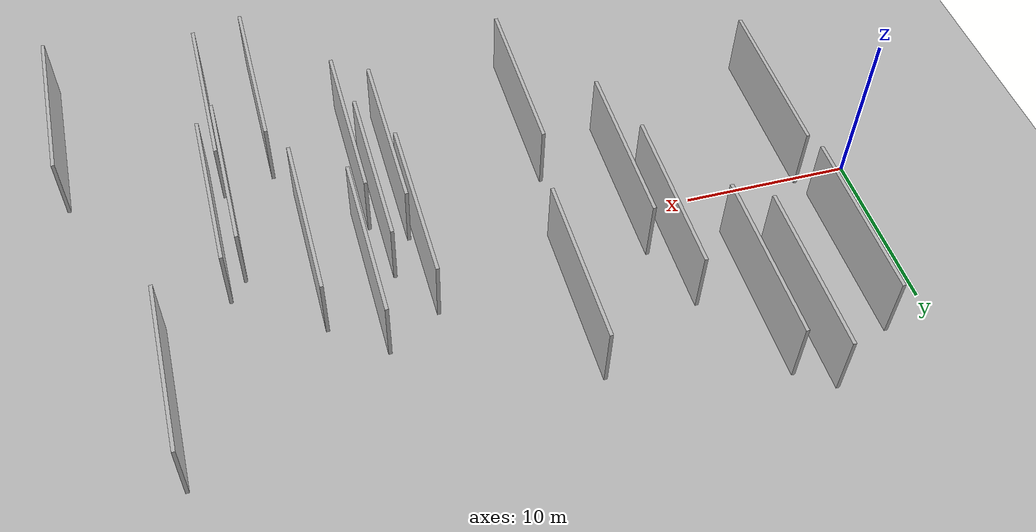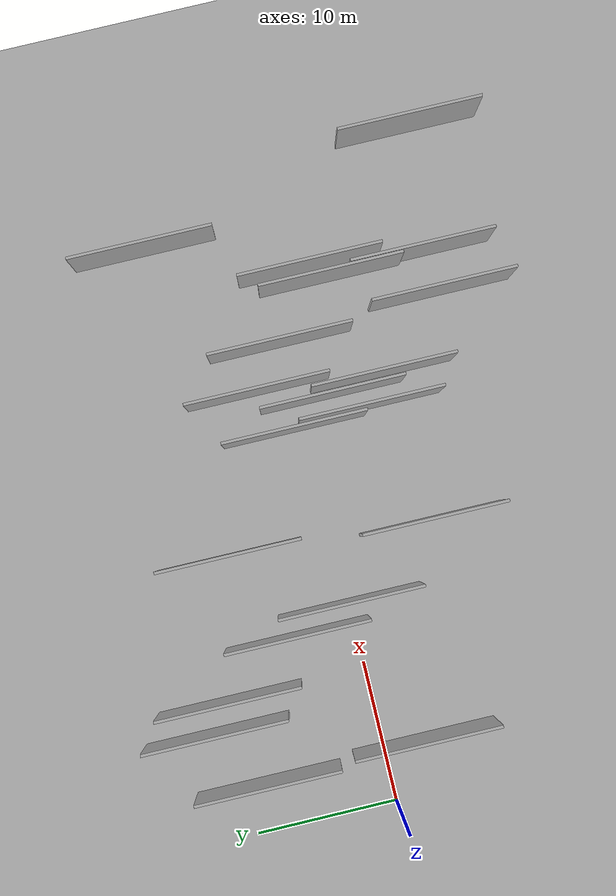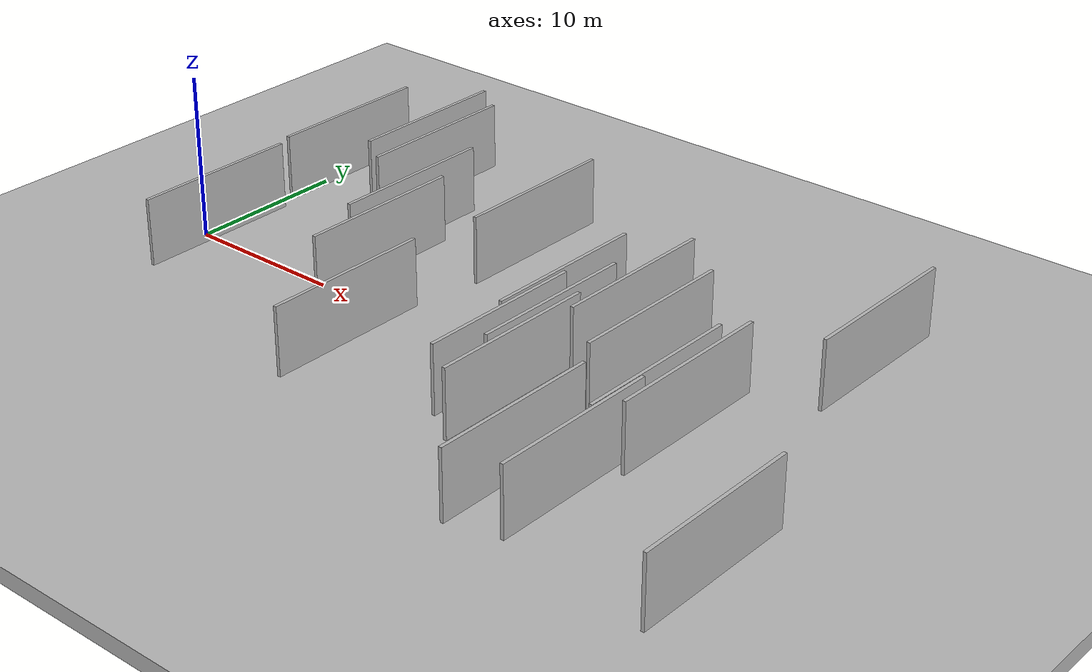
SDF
<?xml version="1.0" encoding="utf-8"?>

<sdf version="1.6">

   <world name="default">

      <gui fullscreen="0">

         <camera name="user_camera">

            <pose>-15 0 4.57585 0 0 0</pose>

            <view_controller>orbit</view_controller>

         </camera>

      </gui>

      <scene>

         <sky>

           <clouds>

             <speed>12</speed>

           </clouds>

         </sky>

         <ambient>0.4 0.4 0.4 1</ambient>

         <background>0.7 0.7 0.7 1</background>

         <shadows>1</shadows>

      </scene>

      <gravity>0 0 -9.8066</gravity>

      <magnetic_field>6e-06 2.3e-05 -4.2e-05</magnetic_field>

      <physics default="0" name="default_physics" type="ode">

         <ode>

            <solver>

               <type>quick</type>

               <iters>10</iters>

               <sor>1.0</sor>

               <use_dynamic_moi_rescaling>0</use_dynamic_moi_rescaling>

            </solver>

            <constraints>

               <cfm>0</cfm>

               <erp>0.2</erp>

               <contact_max_correcting_vel>100</contact_max_correcting_vel>

               <contact_surface_layer>0.001</contact_surface_layer>

            </constraints>

         </ode>

         <max_step_size>0.004</max_step_size>

         <real_time_factor>1</real_time_factor>

         <real_time_update_rate>250</real_time_update_rate>

      </physics>

      <light name="sun" type="directional">

         <cast_shadows>1</cast_shadows>

         <pose>0 0 10 0 0 0</pose>

         <diffuse>0.8 0.8 0.8 1</diffuse>

         <specular>0.2 0.2 0.2 1</specular>

         <attenuation>

            <range>1000</range>

            <constant>0.9</constant>

            <linear>0.01</linear>

            <quadratic>0.001</quadratic>

         </attenuation>

         <direction>-0.5 0.1 -0.9</direction>

      </light>

      <include>

         <name>ground_plane_1</name>

         <uri>model://HANNAS_ground_plane</uri>

         <pose>0 0 0  0 0 0</pose>

      </include>

      <include>

         <name>ground_plane_2</name>

         <uri>model://HANNAS_ground_plane</uri>

         <pose>100 0 0  0 0 0</pose>

      </include>

      <model name="HANNAS_wall_1">

         <static>1</static>

         <pose frame="">36.9016 -10.1512 2.5 0.000000 0.000000 1.570796</pose>

         <link name="link">

            <pose frame="">0 0 2.00 0 0 0</pose>

            <collision name="collision">

               <geometry>

                  <box>

                     <size>10.00 0.2 4.00</size>

                  </box>

               </geometry>

               <max_contacts>10</max_contacts>

               <surface>

                  <contact>

                     <ode/>

                  </contact>

                  <bounce/>

                  <friction>

                     <torsional>

                        <ode/>

                     </torsional>

                     <ode/>

                  </friction>

               </surface>

            </collision>

            <visual name="visual">

               <cast_shadows>0</cast_shadows>

               <geometry>

                  <box>

                     <size>10.00 0.2 4.00</size>

                  </box>

               </geometry>

               <material>

                  <script>

                     <uri>model://HANNAS_wall/materials/scripts</uri>

                     <uri>model://HANNAS_wall/materials/textures</uri>

                     <name>vrc/HANNAS_wall</name>

                  </script>

               </material>

            </visual>

            <self_collide>0</self_collide>

            <enable_wind>0</enable_wind>

            <kinematic>0</kinematic>

         </link>

      </model>

      <model name="HANNAS_wall_2">

         <static>1</static>

         <pose frame="">4.1714 8.2044 2.5 0.000000 0.000000 1.570796</pose>

         <link name="link">

            <pose frame="">0 0 2.00 0 0 0</pose>

            <collision name="collision">

               <geometry>

                  <box>

                     <size>10.00 0.2 4.00</size>

                  </box>

               </geometry>

               <max_contacts>10</max_contacts>

               <surface>

                  <contact>

                     <ode/>

                  </contact>

                  <bounce/>

                  <friction>

                     <torsional>

                        <ode/>

                     </torsional>

                     <ode/>

                  </friction>

               </surface>

            </collision>

            <visual name="visual">

               <cast_shadows>0</cast_shadows>

               <geometry>

                  <box>

                     <size>10.00 0.2 4.00</size>

                  </box>

               </geometry>

               <material>

                  <script>

                     <uri>model://HANNAS_wall/materials/scripts</uri>

                     <uri>model://HANNAS_wall/materials/textures</uri>

                     <name>vrc/HANNAS_wall</name>

                  </script>

               </material>

            </visual>

            <self_collide>0</self_collide>

            <enable_wind>0</enable_wind>

            <kinematic>0</kinematic>

         </link>

      </model>

      <model name="HANNAS_wall_3">

         <static>1</static>

         <pose frame="">8.1892 10.8636 2.5 0.000000 0.000000 1.570796</pose>

         <link name="link">

            <pose frame="">0 0 2.00 0 0 0</pose>

            <collision name="collision">

               <geometry>

                  <box>

                     <size>10.00 0.2 4.00</size>

                  </box>

               </geometry>

               <max_contacts>10</max_contacts>

               <surface>

                  <contact>

                     <ode/>

                  </contact>

                  <bounce/>

                  <friction>

                     <torsional>

                        <ode/>

                     </torsional>

                     <ode/>

                  </friction>

               </surface>

            </collision>

            <visual name="visual">

               <cast_shadows>0</cast_shadows>

               <geometry>

                  <box>

                     <size>10.00 0.2 4.00</size>

                  </box>

               </geometry>

               <material>

                  <script>

                     <uri>model://HANNAS_wall/materials/scripts</uri>

                     <uri>model://HANNAS_wall/materials/textures</uri>

                     <name>vrc/HANNAS_wall</name>

                  </script>

               </material>

            </visual>

            <self_collide>0</self_collide>

            <enable_wind>0</enable_wind>

            <kinematic>0</kinematic>

         </link>

      </model>

      <model name="HANNAS_wall_4">

         <static>1</static>

         <pose frame="">29.3233 -5.6757 2.5 0.000000 0.000000 1.570796</pose>

         <link name="link">

            <pose frame="">0 0 2.00 0 0 0</pose>

            <collision name="collision">

               <geometry>

                  <box>

                     <size>10.00 0.2 4.00</size>

                  </box>

               </geometry>

               <max_contacts>10</max_contacts>

               <surface>

                  <contact>

                     <ode/>

                  </contact>

                  <bounce/>

                  <friction>

                     <torsional>

                        <ode/>

                     </torsional>

                     <ode/>

                  </friction>

               </surface>

            </collision>

            <visual name="visual">

               <cast_shadows>0</cast_shadows>

               <geometry>

                  <box>

                     <size>10.00 0.2 4.00</size>

                  </box>

               </geometry>

               <material>

                  <script>

                     <uri>model://HANNAS_wall/materials/scripts</uri>

                     <uri>model://HANNAS_wall/materials/textures</uri>

                     <name>vrc/HANNAS_wall</name>

                  </script>

               </material>

            </visual>

            <self_collide>0</self_collide>

            <enable_wind>0</enable_wind>

            <kinematic>0</kinematic>

         </link>

      </model>

      <model name="HANNAS_wall_5">

         <static>1</static>

         <pose frame="">32.9487 0.6341 2.5 0.000000 0.000000 1.570796</pose>

         <link name="link">

            <pose frame="">0 0 2.00 0 0 0</pose>

            <collision name="collision">

               <geometry>

                  <box>

                     <size>10.00 0.2 4.00</size>

                  </box>

               </geometry>

               <max_contacts>10</max_contacts>

               <surface>

                  <contact>

                     <ode/>

                  </contact>

                  <bounce/>

                  <friction>

                     <torsional>

                        <ode/>

                     </torsional>

                     <ode/>

                  </friction>

               </surface>

            </collision>

            <visual name="visual">

               <cast_shadows>0</cast_shadows>

               <geometry>

                  <box>

                     <size>10.00 0.2 4.00</size>

                  </box>

               </geometry>

               <material>

                  <script>

                     <uri>model://HANNAS_wall/materials/scripts</uri>

                     <uri>model://HANNAS_wall/materials/textures</uri>

                     <name>vrc/HANNAS_wall</name>

                  </script>

               </material>

            </visual>

            <self_collide>0</self_collide>

            <enable_wind>0</enable_wind>

            <kinematic>0</kinematic>

         </link>

      </model>

      <model name="HANNAS_wall_6">

         <static>1</static>

         <pose frame="">30.0461 2.8955 2.5 0.000000 0.000000 1.570796</pose>

         <link name="link">

            <pose frame="">0 0 2.00 0 0 0</pose>

            <collision name="collision">

               <geometry>

                  <box>

                     <size>10.00 0.2 4.00</size>

                  </box>

               </geometry>

               <max_contacts>10</max_contacts>

               <surface>

                  <contact>

                     <ode/>

                  </contact>

                  <bounce/>

                  <friction>

                     <torsional>

                        <ode/>

                     </torsional>

                     <ode/>

                  </friction>

               </surface>

            </collision>

            <visual name="visual">

               <cast_shadows>0</cast_shadows>

               <geometry>

                  <box>

                     <size>10.00 0.2 4.00</size>

                  </box>

               </geometry>

               <material>

                  <script>

                     <uri>model://HANNAS_wall/materials/scripts</uri>

                     <uri>model://HANNAS_wall/materials/textures</uri>

                     <name>vrc/HANNAS_wall</name>

                  </script>

               </material>

            </visual>

            <self_collide>0</self_collide>

            <enable_wind>0</enable_wind>

            <kinematic>0</kinematic>

         </link>

      </model>

      <model name="HANNAS_wall_7">

         <static>1</static>

         <pose frame="">33.9650 -10.9156 2.5 0.000000 0.000000 1.570796</pose>

         <link name="link">

            <pose frame="">0 0 2.00 0 0 0</pose>

            <collision name="collision">

               <geometry>

                  <box>

                     <size>10.00 0.2 4.00</size>

                  </box>

               </geometry>

               <max_contacts>10</max_contacts>

               <surface>

                  <contact>

                     <ode/>

                  </contact>

                  <bounce/>

                  <friction>

                     <torsional>

                        <ode/>

                     </torsional>

                     <ode/>

                  </friction>

               </surface>

            </collision>

            <visual name="visual">

               <cast_shadows>0</cast_shadows>

               <geometry>

                  <box>

                     <size>10.00 0.2 4.00</size>

                  </box>

               </geometry>

               <material>

                  <script>

                     <uri>model://HANNAS_wall/materials/scripts</uri>

                     <uri>model://HANNAS_wall/materials/textures</uri>

                     <name>vrc/HANNAS_wall</name>

                  </script>

               </material>

            </visual>

            <self_collide>0</self_collide>

            <enable_wind>0</enable_wind>

            <kinematic>0</kinematic>

         </link>

      </model>

      <model name="HANNAS_wall_8">

         <static>1</static>

         <pose frame="">37.6508 -2.5333 2.5 0.000000 0.000000 1.570796</pose>

         <link name="link">

            <pose frame="">0 0 2.00 0 0 0</pose>

            <collision name="collision">

               <geometry>

                  <box>

                     <size>10.00 0.2 4.00</size>

                  </box>

               </geometry>

               <max_contacts>10</max_contacts>

               <surface>

                  <contact>

                     <ode/>

                  </contact>

                  <bounce/>

                  <friction>

                     <torsional>

                        <ode/>

                     </torsional>

                     <ode/>

                  </friction>

               </surface>

            </collision>

            <visual name="visual">

               <cast_shadows>0</cast_shadows>

               <geometry>

                  <box>

                     <size>10.00 0.2 4.00</size>

                  </box>

               </geometry>

               <material>

                  <script>

                     <uri>model://HANNAS_wall/materials/scripts</uri>

                     <uri>model://HANNAS_wall/materials/textures</uri>

                     <name>vrc/HANNAS_wall</name>

                  </script>

               </material>

            </visual>

            <self_collide>0</self_collide>

            <enable_wind>0</enable_wind>

            <kinematic>0</kinematic>

         </link>

      </model>

      <model name="HANNAS_wall_9">

         <static>1</static>

         <pose frame="">10.0956 9.5350 2.5 0.000000 0.000000 1.570796</pose>

         <link name="link">

            <pose frame="">0 0 2.00 0 0 0</pose>

            <collision name="collision">

               <geometry>

                  <box>

                     <size>10.00 0.2 4.00</size>

                  </box>

               </geometry>

               <max_contacts>10</max_contacts>

               <surface>

                  <contact>

                     <ode/>

                  </contact>

                  <bounce/>

                  <friction>

                     <torsional>

                        <ode/>

                     </torsional>

                     <ode/>

                  </friction>

               </surface>

            </collision>

            <visual name="visual">

               <cast_shadows>0</cast_shadows>

               <geometry>

                  <box>

                     <size>10.00 0.2 4.00</size>

                  </box>

               </geometry>

               <material>

                  <script>

                     <uri>model://HANNAS_wall/materials/scripts</uri>

                     <uri>model://HANNAS_wall/materials/textures</uri>

                     <name>vrc/HANNAS_wall</name>

                  </script>

               </material>

            </visual>

            <self_collide>0</self_collide>

            <enable_wind>0</enable_wind>

            <kinematic>0</kinematic>

         </link>

      </model>

      <model name="HANNAS_wall_10">

         <static>1</static>

         <pose frame="">41.3706 8.2817 2.5 0.000000 0.000000 1.570796</pose>

         <link name="link">

            <pose frame="">0 0 2.00 0 0 0</pose>

            <collision name="collision">

               <geometry>

                  <box>

                     <size>10.00 0.2 4.00</size>

                  </box>

               </geometry>

               <max_contacts>10</max_contacts>

               <surface>

                  <contact>

                     <ode/>

                  </contact>

                  <bounce/>

                  <friction>

                     <torsional>

                        <ode/>

                     </torsional>

                     <ode/>

                  </friction>

               </surface>

            </collision>

            <visual name="visual">

               <cast_shadows>0</cast_shadows>

               <geometry>

                  <box>

                     <size>10.00 0.2 4.00</size>

                  </box>

               </geometry>

               <material>

                  <script>

                     <uri>model://HANNAS_wall/materials/scripts</uri>

                     <uri>model://HANNAS_wall/materials/textures</uri>

                     <name>vrc/HANNAS_wall</name>

                  </script>

               </material>

            </visual>

            <self_collide>0</self_collide>

            <enable_wind>0</enable_wind>

            <kinematic>0</kinematic>

         </link>

      </model>

      <model name="HANNAS_wall_11">

         <static>1</static>

         <pose frame="">28.6716 -1.9742 2.5 0.000000 0.000000 1.570796</pose>

         <link name="link">

            <pose frame="">0 0 2.00 0 0 0</pose>

            <collision name="collision">

               <geometry>

                  <box>

                     <size>10.00 0.2 4.00</size>

                  </box>

               </geometry>

               <max_contacts>10</max_contacts>

               <surface>

                  <contact>

                     <ode/>

                  </contact>

                  <bounce/>

                  <friction>

                     <torsional>

                        <ode/>

                     </torsional>

                     <ode/>

                  </friction>

               </surface>

            </collision>

            <visual name="visual">

               <cast_shadows>0</cast_shadows>

               <geometry>

                  <box>

                     <size>10.00 0.2 4.00</size>

                  </box>

               </geometry>

               <material>

                  <script>

                     <uri>model://HANNAS_wall/materials/scripts</uri>

                     <uri>model://HANNAS_wall/materials/textures</uri>

                     <name>vrc/HANNAS_wall</name>

                  </script>

               </material>

            </visual>

            <self_collide>0</self_collide>

            <enable_wind>0</enable_wind>

            <kinematic>0</kinematic>

         </link>

      </model>

      <model name="HANNAS_wall_12">

         <static>1</static>

         <pose frame="">26.9527 1.0534 2.5 0.000000 0.000000 1.570796</pose>

         <link name="link">

            <pose frame="">0 0 2.00 0 0 0</pose>

            <collision name="collision">

               <geometry>

                  <box>

                     <size>10.00 0.2 4.00</size>

                  </box>

               </geometry>

               <max_contacts>10</max_contacts>

               <surface>

                  <contact>

                     <ode/>

                  </contact>

                  <bounce/>

                  <friction>

                     <torsional>

                        <ode/>

                     </torsional>

                     <ode/>

                  </friction>

               </surface>

            </collision>

            <visual name="visual">

               <cast_shadows>0</cast_shadows>

               <geometry>

                  <box>

                     <size>10.00 0.2 4.00</size>

                  </box>

               </geometry>

               <material>

                  <script>

                     <uri>model://HANNAS_wall/materials/scripts</uri>

                     <uri>model://HANNAS_wall/materials/textures</uri>

                     <name>vrc/HANNAS_wall</name>

                  </script>

               </material>

            </visual>

            <self_collide>0</self_collide>

            <enable_wind>0</enable_wind>

            <kinematic>0</kinematic>

         </link>

      </model>

      <model name="HANNAS_wall_13">

         <static>1</static>

         <pose frame="">13.3282 4.0513 2.5 0.000000 0.000000 1.570796</pose>

         <link name="link">

            <pose frame="">0 0 2.00 0 0 0</pose>

            <collision name="collision">

               <geometry>

                  <box>

                     <size>10.00 0.2 4.00</size>

                  </box>

               </geometry>

               <max_contacts>10</max_contacts>

               <surface>

                  <contact>

                     <ode/>

                  </contact>

                  <bounce/>

                  <friction>

                     <torsional>

                        <ode/>

                     </torsional>

                     <ode/>

                  </friction>

               </surface>

            </collision>

            <visual name="visual">

               <cast_shadows>0</cast_shadows>

               <geometry>

                  <box>

                     <size>10.00 0.2 4.00</size>

                  </box>

               </geometry>

               <material>

                  <script>

                     <uri>model://HANNAS_wall/materials/scripts</uri>

                     <uri>model://HANNAS_wall/materials/textures</uri>

                     <name>vrc/HANNAS_wall</name>

                  </script>

               </material>

            </visual>

            <self_collide>0</self_collide>

            <enable_wind>0</enable_wind>

            <kinematic>0</kinematic>

         </link>

      </model>

      <model name="HANNAS_wall_14">

         <static>1</static>

         <pose frame="">4.5772 -2.7460 2.5 0.000000 0.000000 1.570796</pose>

         <link name="link">

            <pose frame="">0 0 2.00 0 0 0</pose>

            <collision name="collision">

               <geometry>

                  <box>

                     <size>10.00 0.2 4.00</size>

                  </box>

               </geometry>

               <max_contacts>10</max_contacts>

               <surface>

                  <contact>

                     <ode/>

                  </contact>

                  <bounce/>

                  <friction>

                     <torsional>

                        <ode/>

                     </torsional>

                     <ode/>

                  </friction>

               </surface>

            </collision>

            <visual name="visual">

               <cast_shadows>0</cast_shadows>

               <geometry>

                  <box>

                     <size>10.00 0.2 4.00</size>

                  </box>

               </geometry>

               <material>

                  <script>

                     <uri>model://HANNAS_wall/materials/scripts</uri>

                     <uri>model://HANNAS_wall/materials/textures</uri>

                     <name>vrc/HANNAS_wall</name>

                  </script>

               </material>

            </visual>

            <self_collide>0</self_collide>

            <enable_wind>0</enable_wind>

            <kinematic>0</kinematic>

         </link>

      </model>

      <model name="HANNAS_wall_15">

         <static>1</static>

         <pose frame="">36.6716 -3.7565 2.5 0.000000 0.000000 1.570796</pose>

         <link name="link">

            <pose frame="">0 0 2.00 0 0 0</pose>

            <collision name="collision">

               <geometry>

                  <box>

                     <size>10.00 0.2 4.00</size>

                  </box>

               </geometry>

               <max_contacts>10</max_contacts>

               <surface>

                  <contact>

                     <ode/>

                  </contact>

                  <bounce/>

                  <friction>

                     <torsional>

                        <ode/>

                     </torsional>

                     <ode/>

                  </friction>

               </surface>

            </collision>

            <visual name="visual">

               <cast_shadows>0</cast_shadows>

               <geometry>

                  <box>

                     <size>10.00 0.2 4.00</size>

                  </box>

               </geometry>

               <material>

                  <script>

                     <uri>model://HANNAS_wall/materials/scripts</uri>

                     <uri>model://HANNAS_wall/materials/textures</uri>

                     <name>vrc/HANNAS_wall</name>

                  </script>

               </material>

            </visual>

            <self_collide>0</self_collide>

            <enable_wind>0</enable_wind>

            <kinematic>0</kinematic>

         </link>

      </model>

      <model name="HANNAS_wall_16">

         <static>1</static>

         <pose frame="">27.3388 -4.3617 2.5 0.000000 0.000000 1.570796</pose>

         <link name="link">

            <pose frame="">0 0 2.00 0 0 0</pose>

            <collision name="collision">

               <geometry>

                  <box>

                     <size>10.00 0.2 4.00</size>

                  </box>

               </geometry>

               <max_contacts>10</max_contacts>

               <surface>

                  <contact>

                     <ode/>

                  </contact>

                  <bounce/>

                  <friction>

                     <torsional>

                        <ode/>

                     </torsional>

                     <ode/>

                  </friction>

               </surface>

            </collision>

            <visual name="visual">

               <cast_shadows>0</cast_shadows>

               <geometry>

                  <box>

                     <size>10.00 0.2 4.00</size>

                  </box>

               </geometry>

               <material>

                  <script>

                     <uri>model://HANNAS_wall/materials/scripts</uri>

                     <uri>model://HANNAS_wall/materials/textures</uri>

                     <name>vrc/HANNAS_wall</name>

                  </script>

               </material>

            </visual>

            <self_collide>0</self_collide>

            <enable_wind>0</enable_wind>

            <kinematic>0</kinematic>

         </link>

      </model>

      <model name="HANNAS_wall_17">

         <static>1</static>

         <pose frame="">45.7025 -11.3442 2.5 0.000000 0.000000 1.570796</pose>

         <link name="link">

            <pose frame="">0 0 2.00 0 0 0</pose>

            <collision name="collision">

               <geometry>

                  <box>

                     <size>10.00 0.2 4.00</size>

                  </box>

               </geometry>

               <max_contacts>10</max_contacts>

               <surface>

                  <contact>

                     <ode/>

                  </contact>

                  <bounce/>

                  <friction>

                     <torsional>

                        <ode/>

                     </torsional>

                     <ode/>

                  </friction>

               </surface>

            </collision>

            <visual name="visual">

               <cast_shadows>0</cast_shadows>

               <geometry>

                  <box>

                     <size>10.00 0.2 4.00</size>

                  </box>

               </geometry>

               <material>

                  <script>

                     <uri>model://HANNAS_wall/materials/scripts</uri>

                     <uri>model://HANNAS_wall/materials/textures</uri>

                     <name>vrc/HANNAS_wall</name>

                  </script>

               </material>

            </visual>

            <self_collide>0</self_collide>

            <enable_wind>0</enable_wind>

            <kinematic>0</kinematic>

         </link>

      </model>

      <model name="HANNAS_wall_18">

         <static>1</static>

         <pose frame="">14.7192 0.0561 2.5 0.000000 0.000000 1.570796</pose>

         <link name="link">

            <pose frame="">0 0 2.00 0 0 0</pose>

            <collision name="collision">

               <geometry>

                  <box>

                     <size>10.00 0.2 4.00</size>

                  </box>

               </geometry>

               <max_contacts>10</max_contacts>

               <surface>

                  <contact>

                     <ode/>

                  </contact>

                  <bounce/>

                  <friction>

                     <torsional>

                        <ode/>

                     </torsional>

                     <ode/>

                  </friction>

               </surface>

            </collision>

            <visual name="visual">

               <cast_shadows>0</cast_shadows>

               <geometry>

                  <box>

                     <size>10.00 0.2 4.00</size>

                  </box>

               </geometry>

               <material>

                  <script>

                     <uri>model://HANNAS_wall/materials/scripts</uri>

                     <uri>model://HANNAS_wall/materials/textures</uri>

                     <name>vrc/HANNAS_wall</name>

                  </script>

               </material>

            </visual>

            <self_collide>0</self_collide>

            <enable_wind>0</enable_wind>

            <kinematic>0</kinematic>

         </link>

      </model>

      <model name="HANNAS_wall_19">

         <static>1</static>

         <pose frame="">18.8960 -6.6735 2.5 0.000000 0.000000 1.570796</pose>

         <link name="link">

            <pose frame="">0 0 2.00 0 0 0</pose>

            <collision name="collision">

               <geometry>

                  <box>

                     <size>10.00 0.2 4.00</size>

                  </box>

               </geometry>

               <max_contacts>10</max_contacts>

               <surface>

                  <contact>

                     <ode/>

                  </contact>

                  <bounce/>

                  <friction>

                     <torsional>

                        <ode/>

                     </torsional>

                     <ode/>

                  </friction>

               </surface>

            </collision>

            <visual name="visual">

               <cast_shadows>0</cast_shadows>

               <geometry>

                  <box>

                     <size>10.00 0.2 4.00</size>

                  </box>

               </geometry>

               <material>

                  <script>

                     <uri>model://HANNAS_wall/materials/scripts</uri>

                     <uri>model://HANNAS_wall/materials/textures</uri>

                     <name>vrc/HANNAS_wall</name>

                  </script>

               </material>

            </visual>

            <self_collide>0</self_collide>

            <enable_wind>0</enable_wind>

            <kinematic>0</kinematic>

         </link>

      </model>

      <model name="HANNAS_wall_20">

         <static>1</static>

         <pose frame="">19.6145 7.3024 2.5 0.000000 0.000000 1.570796</pose>

         <link name="link">

            <pose frame="">0 0 2.00 0 0 0</pose>

            <collision name="collision">

               <geometry>

                  <box>

                     <size>10.00 0.2 4.00</size>

                  </box>

               </geometry>

               <max_contacts>10</max_contacts>

               <surface>

                  <contact>

                     <ode/>

                  </contact>

                  <bounce/>

                  <friction>

                     <torsional>

                        <ode/>

                     </torsional>

                     <ode/>

                  </friction>

               </surface>

            </collision>

            <visual name="visual">

               <cast_shadows>0</cast_shadows>

               <geometry>

                  <box>

                     <size>10.00 0.2 4.00</size>

                  </box>

               </geometry>

               <material>

                  <script>

                     <uri>model://HANNAS_wall/materials/scripts</uri>

                     <uri>model://HANNAS_wall/materials/textures</uri>

                     <name>vrc/HANNAS_wall</name>

                  </script>

               </material>

            </visual>

            <self_collide>0</self_collide>

            <enable_wind>0</enable_wind>

            <kinematic>0</kinematic>

         </link>

      </model>

   </world>

</sdf>

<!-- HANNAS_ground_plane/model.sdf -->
<sdf version="1.4">
<model name="HANNAS_ground_plane">
  <static>true</static>
    <link name="link">
      <collision name="collision">
        <geometry>
          <plane>
            <normal>0 0 1</normal>
            <size>1000 1000</size>
          </plane>
        </geometry>
        <surface>
          <friction>
            <ode>
              <mu>100</mu>
              <mu2>50</mu2>
            </ode>
          </friction>
        </surface>
      </collision>
      <visual name="visual">
        <cast_shadows>false</cast_shadows>
        <geometry>
          <plane>
            <normal>0 0 1</normal>
            <size>1000 1000</size>
          </plane>
        </geometry>
        <material>
          <script>
            <uri>model://HANNAS_ground_plane/materials/scripts/HANNAS_ground_plane.material</uri>
	    <uri>model://HANNAS_ground_plane/materials/textures</uri>
            <name>HANNASGroundPlane/Image</name>
          </script>
        </material>
      </visual>
    </link>
  </model>
</sdf>
